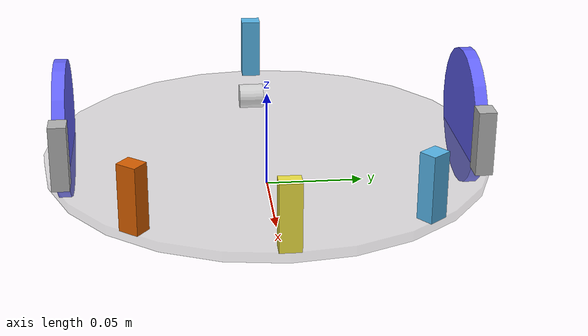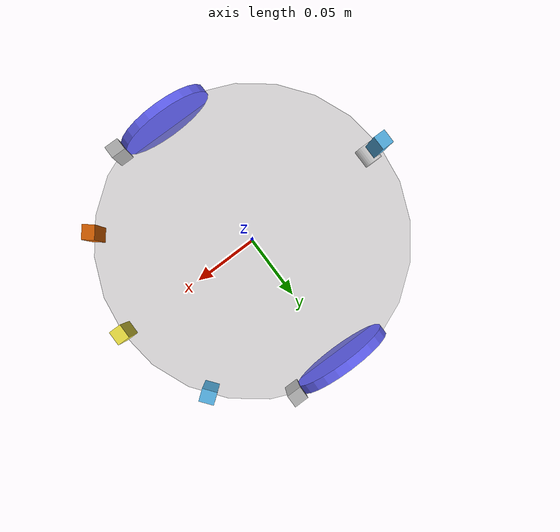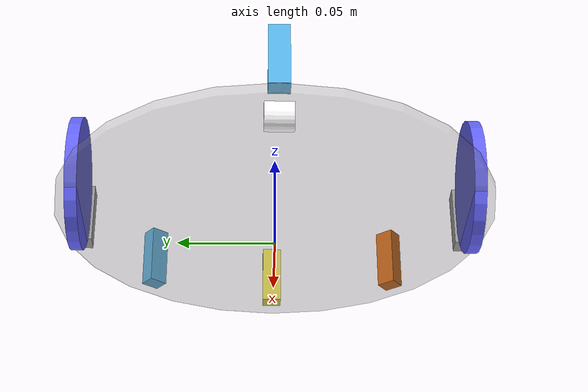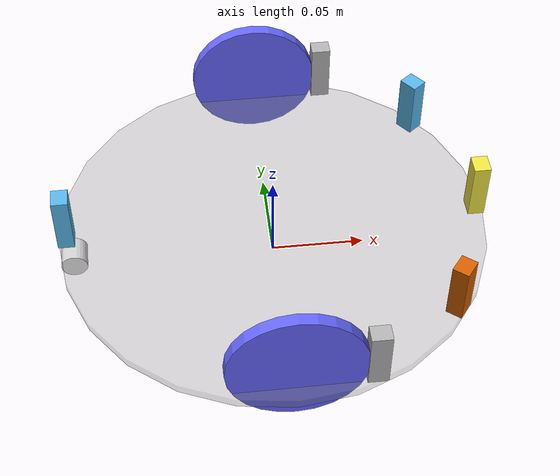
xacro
<?xml version="1.0" encoding="UTF-8" ?>
<robot name="prsg2_robot" xmlns:xacro="http://www.ros.org/wiki/xacro">

  <xacro:property name="pi" value="3.14159" />
  <xacro:property name="degree" value="${pi / 180}" />
  <xacro:property name="inch" value="0.0254" />

  <xacro:property name="base_diameter" value="${9 * inch}" />
  <xacro:property name="base_thickness" value="0.005" />
  <xacro:property name="deck_height" value="0.0206" />

  <xacro:property name="wheel_diameter" value="0.070" />
  <xacro:property name="wheel_thickness" value="0.00635" />
  <xacro:property name="wheel_separation" value="0.206375" />

  <xacro:property name="caster_diameter" value="0.014" />
  <xacro:property name="caster_thickness" value="0.014" />
  <xacro:property name="caster_setback" value="${caster_diameter / 2}" />

  <xacro:property name="ir_setback" value="0.00" />

  <xacro:property name="camera_height" value="0.075" />
  <xacro:property name="camera_setback" value="0.025" />

  <xacro:macro name="material_color" params="r g b a:=1.0">
    <material name="color_${r}_${g}_${b}_{$a}">
      <color rgba="${r} ${g} ${b} ${a}" />
    </material>
  </xacro:macro>

  <xacro:macro name="polar_position" params="r theta z:=0 l0 l1 angle:=0">
    <link name="${l1}_ray_link" />
    <joint name="${l0}_to_${l1}_ray" type="fixed">
      <parent link="${l0}" />
      <child link="${l1}_ray_link" />
      <origin rpy="0 0 ${theta}" />
    </joint>
    <joint name="${l1}_ray_to_${l1}" type="fixed">
      <parent link="${l1}_ray_link" />
      <child link="${l1}" />
      <origin xyz="${r} 0 ${z}" rpy="0 0 ${angle}" />
    </joint>
  </xacro:macro>

  <!-- The robot description -->

  <link name="base_link">
    <visual>
      <origin xyz="0 0 ${deck_height - base_thickness/2}" rpy="0 0 0" />
      <geometry>
        <cylinder length="${base_thickness}" radius="${base_diameter / 2}" />
      </geometry>
      <xacro:material_color r="0.5" g="0.5" b="0.5" a="0.3" />
    </visual>
  </link>

  <xacro:macro name="wheel" params="link_name relative_link r theta">
    <link name="${link_name}">
      <visual>
        <origin xyz="0 0 0" rpy="${90 * degree} 0 0" />
        <geometry>
          <cylinder length="${wheel_thickness}" radius="${wheel_diameter / 2}" />
        </geometry>
        <xacro:material_color r="0.4" g="0.4" b="1.0" />
      </visual>
    </link>
    <xacro:polar_position r="${r}" theta="${theta}" z="${wheel_diameter / 2}"
      l0="${relative_link}" l1="${link_name}"
      angle="${- theta}" />
  </xacro:macro>

  <xacro:wheel link_name="left_wheel_link" relative_link="base_link"
    r="${wheel_separation / 2}" theta="${90 * degree}" />

  <xacro:wheel link_name="right_wheel_link" relative_link="base_link"
    r="${wheel_separation / 2}" theta="${-90 * degree}" />

  <link name="rear_caster_link">
    <visual>
      <origin rpy="${90 * degree} 0 0" />
      <geometry>
        <cylinder length="${caster_thickness}" radius="${caster_diameter/2}" />
      </geometry>
      <xacro:material_color r="1.0" g="1.0" b="1.0" />
    </visual>
  </link>
  <xacro:polar_position
    r="${base_diameter/2 - caster_setback}"
    theta="${-180 * degree}" angle="${180 * degree}"
    z="${caster_diameter / 2}"
    l0="base_link" l1="rear_caster_link" />

  <xacro:macro name="ir_sensor" params="link_name theta z:=0.019 angle:=0">
    <link name="${link_name}">
      <visual>
        <origin xyz="-0.004385 0 -0.00249" rpy="0 0 0" />
        <geometry>
          <!-- Dimensions taken from Pololu dimensional diagram:
            https://www.pololu.com/file/0J817/sds02a-dimensions.pdf -->
          <box size="0.00877 0.01041 0.03302" />
        </geometry>
      </visual>
    </link>
    <xacro:polar_position r="${base_diameter/2 - ir_setback}"
      theta="${theta}" z="${deck_height + z}" angle="${angle}"
      l0="base_link" l1="${link_name}" />
  </xacro:macro>

  <xacro:ir_sensor link_name="ir_left_link" theta="${70 * degree}" angle="${20 *degree}" />
  <xacro:ir_sensor link_name="ir_left_front_link" theta="${38 * degree}" />
  <xacro:ir_sensor link_name="ir_front_link" theta="${0 * degree}" />
  <xacro:ir_sensor link_name="ir_right_front_link" theta="${-38 * degree}" />
  <xacro:ir_sensor link_name="ir_right_link" theta="${-70 * degree}" angle="${-20 * degree}" />
  <xacro:ir_sensor link_name="ir_rear_link" theta="${180 * degree}" />

</robot>
